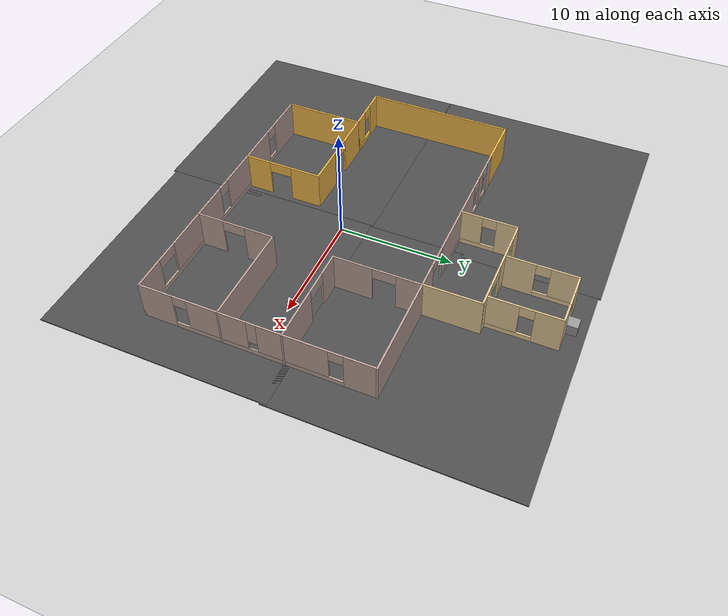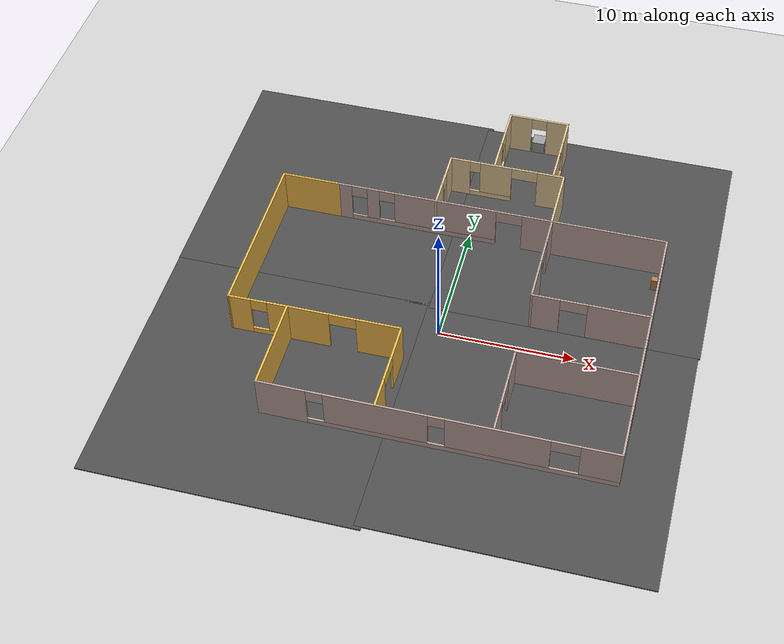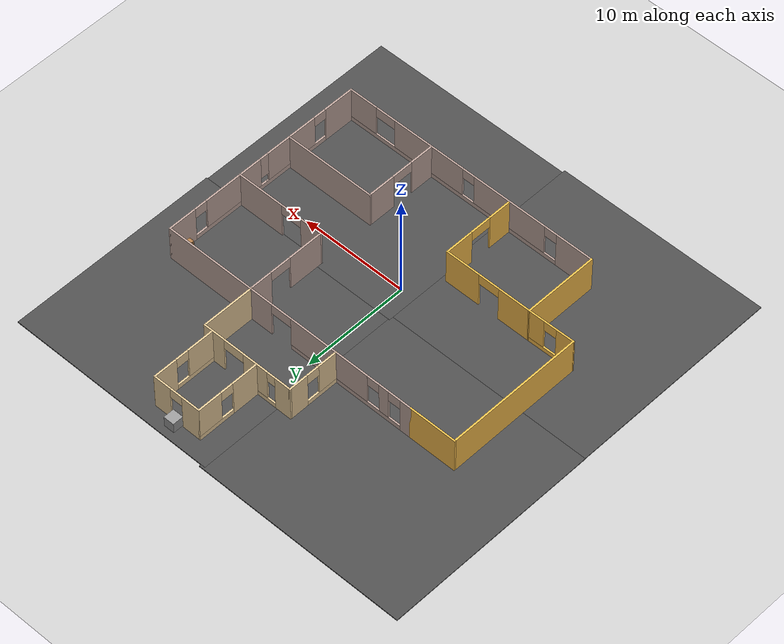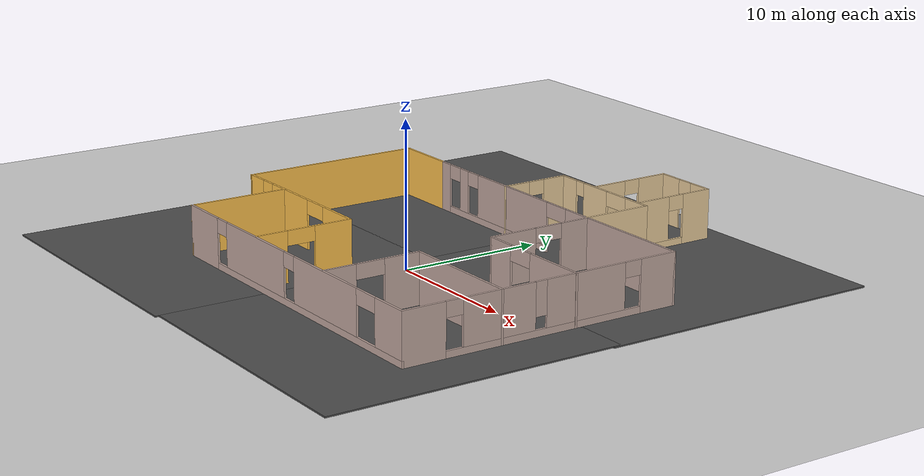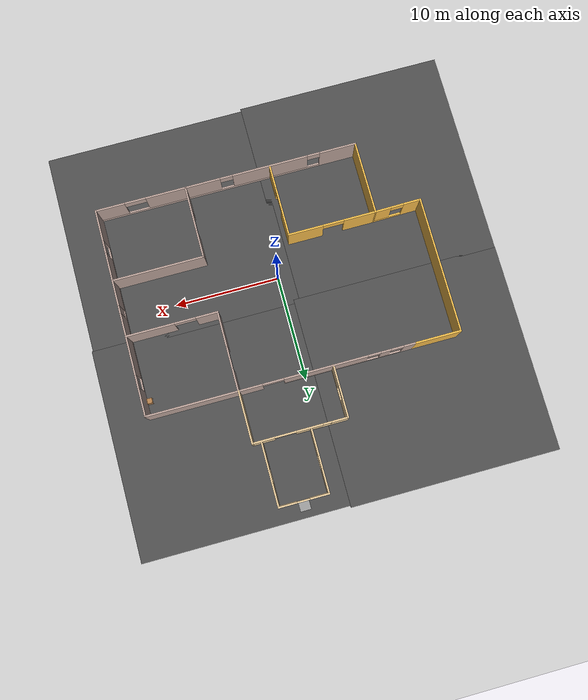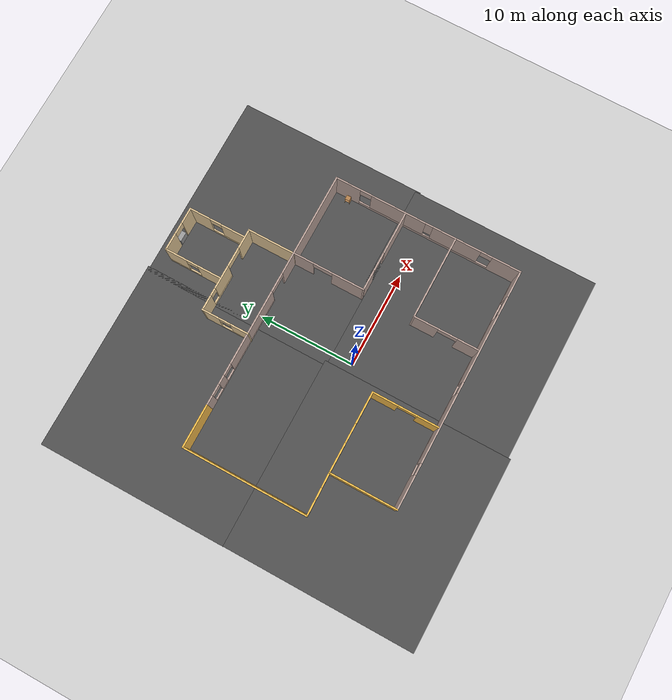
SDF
<sdf version="1.7">
 <world name="default">
  <model name="ground_plane">
   <static>1</static>
   <link name="link">
    <collision name="collision">
     <geometry><plane><normal>0 0 1</normal><size>100 100</size></plane></geometry>
     <surface><friction><ode><mu>100</mu><mu2>50</mu2></ode></friction></surface>
    </collision>
    <visual name="visual">
     <cast_shadows>0</cast_shadows>
     <geometry><plane><normal>0 0 1</normal><size>100 100</size></plane></geometry>
     <material>
      <script><uri>file://media/materials/scripts/gazebo.material</uri><name>Gazebo/Grey</name></script>
     </material>
    </visual>
   </link>
  </model>
  <model name="asphalt_plane">
   <static>1</static>
   <link name="link">
    <collision name="collision">
     <geometry><box><size>20 20 0.1</size></box></geometry>
     <surface><friction><ode><mu>100</mu><mu2>50</mu2></ode></friction></surface>
    </collision>
    <visual name="visual">
     <cast_shadows>0</cast_shadows>
     <geometry><box><size>20 20 0.1</size></box></geometry>
     <material>
      <script>
       <uri>model://asphalt_plane/materials/scripts</uri>
       <uri>model://asphalt_plane/materials/textures</uri>
       <name>vrc/asphalt</name>
      </script>
     </material>
    </visual>
   </link>
   <pose>-10.8531 -7.50842 0 0 -0 0</pose>
  </model>
  <model name="asphalt_plane_clone">
   <static>1</static>
   <link name="link">
    <collision name="collision">
     <geometry><box><size>20 20 0.1</size></box></geometry>
     <surface><friction><ode><mu>100</mu><mu2>50</mu2></ode></friction></surface>
    </collision>
    <visual name="visual">
     <cast_shadows>0</cast_shadows>
     <geometry><box><size>20 20 0.1</size></box></geometry>
     <material>
      <script>
       <uri>model://asphalt_plane/materials/scripts</uri>
       <uri>model://asphalt_plane/materials/textures</uri>
       <name>vrc/asphalt</name>
      </script>
     </material>
    </visual>
   </link>
   <pose>-10.8719 12.3643 0 0 -0 0</pose>
  </model>
  <model name="asphalt_plane_clone_clone">
   <static>1</static>
   <link name="link">
    <collision name="collision">
     <geometry><box><size>20 20 0.1</size></box></geometry>
     <surface><friction><ode><mu>100</mu><mu2>50</mu2></ode></friction></surface>
    </collision>
    <visual name="visual">
     <cast_shadows>0</cast_shadows>
     <geometry><box><size>20 20 0.1</size></box></geometry>
     <material>
      <script>
       <uri>model://asphalt_plane/materials/scripts</uri>
       <uri>model://asphalt_plane/materials/textures</uri>
       <name>vrc/asphalt</name>
      </script>
     </material>
    </visual>
   </link>
   <pose>8.71597 12.1785 0 0 -0 0</pose>
  </model>
  <model name="asphalt_plane_clone_clone_0">
   <static>1</static>
   <link name="link">
    <collision name="collision">
     <geometry><box><size>20 20 0.1</size></box></geometry>
     <surface><friction><ode><mu>100</mu><mu2>50</mu2></ode></friction></surface>
    </collision>
    <visual name="visual">
     <cast_shadows>0</cast_shadows>
     <geometry><box><size>20 20 0.1</size></box></geometry>
     <material>
      <script>
       <uri>model://asphalt_plane/materials/scripts</uri>
       <uri>model://asphalt_plane/materials/textures</uri>
       <name>vrc/asphalt</name>
      </script>
     </material>
    </visual>
   </link>
   <pose>8.59987 -7.25838 0 0 -0 0</pose>
  </model>
  <light name="sun" type="directional">
   <pose>0 0 10 0 -0 0</pose>
   <diffuse>0.8 0.8 0.8 1</diffuse>
   <specular>0.2 0.2 0.2 1</specular>
   <attenuation>
    <range>1000</range>
    <constant>0.9</constant>
    <linear>0.01</linear>
    <quadratic>0.001</quadratic>
   </attenuation>
   <direction>-0.5 0.1 -0.9</direction>
   <spot><inner_angle>0</inner_angle><outer_angle>0</outer_angle><falloff>0</falloff></spot>
  </light>
  <gravity>0 0 -9.8</gravity>
  <magnetic_field>6e-06 2.3e-05 -4.2e-05</magnetic_field>
  <atmosphere type="adiabatic"/>
  <physics name="default_physics" default="0" type="ode">
   <max_step_size>0.001</max_step_size>
   <real_time_factor>1</real_time_factor>
   <real_time_update_rate>1000</real_time_update_rate>
  </physics>
  <scene><ambient>0.4 0.4 0.4 1</ambient><background>0.7 0.7 0.7 1</background><shadows>1</shadows></scene>
  <audio><device>default</device></audio>
  <spherical_coordinates>
   <surface_model>EARTH_WGS84</surface_model>
   <latitude_deg>47.8406</latitude_deg>
   <longitude_deg>10.6199</longitude_deg>
   <elevation>740</elevation>
   <heading_deg>180</heading_deg>
  </spherical_coordinates>
  <model name="newHouseModel">
   <pose>0.12131 5.30636 0 0 -0 0</pose>
   <link name="Wall_107">
    <pose>2.16592 -15.2555 0 0 -0 0</pose>
    <visual name="Wall_107_Visual_0">
     <pose>-10.8373 0 1.75 0 -0 0</pose>
     <geometry><box><size>3.57533 0.15 3.5</size></box></geometry>
     <material>
      <script><uri>file://media/materials/scripts/gazebo.material</uri><name>Gazebo/Grey</name></script>
      <ambient>0.760784 0.662745 0.627451 1</ambient>
     </material>
     <meta><layer>0</layer></meta>
    </visual>
    <collision name="Wall_107_Collision_0">
     <geometry><box><size>3.57533 0.15 3.5</size></box></geometry>
     <pose>-10.8373 0 1.75 0 -0 0</pose>
    </collision>
    <visual name="Wall_107_Visual_1">
     <pose>1.78767 0 0.25 0 -0 0</pose>
     <geometry><box><size>21.6747 0.15 0.5</size></box></geometry>
     <material>
      <script><uri>file://media/materials/scripts/gazebo.material</uri><name>Gazebo/Grey</name></script>
      <ambient>0.760784 0.662745 0.627451 1</ambient>
     </material>
     <meta><layer>0</layer></meta>
    </visual>
    <collision name="Wall_107_Collision_1">
     <geometry><box><size>21.6747 0.15 0.5</size></box></geometry>
     <pose>1.78767 0 0.25 0 -0 0</pose>
    </collision>
    <visual name="Wall_107_Visual_2">
     <pose>-4.21472 0 2 0 -0 0</pose>
     <geometry><box><size>7.26989 0.15 3</size></box></geometry>
     <material>
      <script><uri>file://media/materials/scripts/gazebo.material</uri><name>Gazebo/Grey</name></script>
      <ambient>0.760784 0.662745 0.627451 1</ambient>
     </material>
     <meta><layer>0</layer></meta>
    </visual>
    <collision name="Wall_107_Collision_2">
     <geometry><box><size>7.26989 0.15 3</size></box></geometry>
     <pose>-4.21472 0 2 0 -0 0</pose>
    </collision>
    <visual name="Wall_107_Visual_3">
     <pose>4.20926 0 2 0 -0 0</pose>
     <geometry><box><size>7.17807 0.15 3</size></box></geometry>
     <material>
      <script><uri>file://media/materials/scripts/gazebo.material</uri><name>Gazebo/Grey</name></script>
      <ambient>0.760784 0.662745 0.627451 1</ambient>
     </material>
     <meta><layer>0</layer></meta>
    </visual>
    <collision name="Wall_107_Collision_3">
     <geometry><box><size>7.17807 0.15 3</size></box></geometry>
     <pose>4.20926 0 2 0 -0 0</pose>
    </collision>
    <visual name="Wall_107_Visual_4">
     <pose>11.2116 0 2 0 -0 0</pose>
     <geometry><box><size>2.82671 0.15 3</size></box></geometry>
     <material>
      <script><uri>file://media/materials/scripts/gazebo.material</uri><name>Gazebo/Grey</name></script>
      <ambient>0.760784 0.662745 0.627451 1</ambient>
     </material>
     <meta><layer>0</layer></meta>
    </visual>
    <collision name="Wall_107_Collision_4">
     <geometry><box><size>2.82671 0.15 3</size></box></geometry>
     <pose>11.2116 0 2 0 -0 0</pose>
    </collision>
    <visual name="Wall_107_Visual_5">
     <pose>-8.44967 0 3 0 -0 0</pose>
     <geometry><box><size>1.2 0.15 1</size></box></geometry>
     <material>
      <script><uri>file://media/materials/scripts/gazebo.material</uri><name>Gazebo/Grey</name></script>
      <ambient>0.760784 0.662745 0.627451 1</ambient>
     </material>
     <meta><layer>0</layer></meta>
    </visual>
    <collision name="Wall_107_Collision_5">
     <geometry><box><size>1.2 0.15 1</size></box></geometry>
     <pose>-8.44967 0 3 0 -0 0</pose>
    </collision>
    <visual name="Wall_107_Visual_6">
     <pose>0.020225 0 3 0 -0 0</pose>
     <geometry><box><size>1.2 0.15 1</size></box></geometry>
     <material>
      <script><uri>file://media/materials/scripts/gazebo.material</uri><name>Gazebo/Grey</name></script>
      <ambient>0.760784 0.662745 0.627451 1</ambient>
     </material>
     <meta><layer>0</layer></meta>
    </visual>
    <collision name="Wall_107_Collision_6">
     <geometry><box><size>1.2 0.15 1</size></box></geometry>
     <pose>0.020225 0 3 0 -0 0</pose>
    </collision>
    <visual name="Wall_107_Visual_7">
     <pose>8.79829 0 3 0 -0 0</pose>
     <geometry><box><size>2 0.15 1</size></box></geometry>
     <material>
      <script><uri>file://media/materials/scripts/gazebo.material</uri><name>Gazebo/Grey</name></script>
      <ambient>0.760784 0.662745 0.627451 1</ambient>
     </material>
     <meta><layer>0</layer></meta>
    </visual>
    <collision name="Wall_107_Collision_7">
     <geometry><box><size>2 0.15 1</size></box></geometry>
     <pose>8.79829 0 3 0 -0 0</pose>
    </collision>
   </link>
   <link name="Wall_108">
    <pose>14.7159 -11.8305 0 0 -0 1.5708</pose>
    <visual name="Wall_108_Visual_0">
     <pose>-1.99699 0 1.75 0 -0 0</pose>
     <geometry><box><size>3.00601 0.15 3.5</size></box></geometry>
     <material>
      <script><uri>file://media/materials/scripts/gazebo.material</uri><name>Gazebo/Grey</name></script>
      <ambient>0.760784 0.662745 0.627451 1</ambient>
     </material>
     <meta><layer>0</layer></meta>
    </visual>
    <collision name="Wall_108_Collision_0">
     <geometry><box><size>3.00601 0.15 3.5</size></box></geometry>
     <pose>-1.99699 0 1.75 0 -0 0</pose>
    </collision>
    <visual name="Wall_108_Visual_1">
     <pose>1.50301 0 0.25 0 -0 0</pose>
     <geometry><box><size>3.99399 0.15 0.5</size></box></geometry>
     <material>
      <script><uri>file://media/materials/scripts/gazebo.material</uri><name>Gazebo/Grey</name></script>
      <ambient>0.760784 0.662745 0.627451 1</ambient>
     </material>
     <meta><layer>0</layer></meta>
    </visual>
    <collision name="Wall_108_Collision_1">
     <geometry><box><size>3.99399 0.15 0.5</size></box></geometry>
     <pose>1.50301 0 0.25 0 -0 0</pose>
    </collision>
    <visual name="Wall_108_Visual_2">
     <pose>2.10301 0 2 0 -0 0</pose>
     <geometry><box><size>2.79399 0.15 3</size></box></geometry>
     <material>
      <script><uri>file://media/materials/scripts/gazebo.material</uri><name>Gazebo/Grey</name></script>
      <ambient>0.760784 0.662745 0.627451 1</ambient>
     </material>
     <meta><layer>0</layer></meta>
    </visual>
    <collision name="Wall_108_Collision_2">
     <geometry><box><size>2.79399 0.15 3</size></box></geometry>
     <pose>2.10301 0 2 0 -0 0</pose>
    </collision>
    <visual name="Wall_108_Visual_3">
     <pose>0.106013 0 3 0 -0 0</pose>
     <geometry><box><size>1.2 0.15 1</size></box></geometry>
     <material>
      <script><uri>file://media/materials/scripts/gazebo.material</uri><name>Gazebo/Grey</name></script>
      <ambient>0.760784 0.662745 0.627451 1</ambient>
     </material>
     <meta><layer>0</layer></meta>
    </visual>
    <collision name="Wall_108_Collision_3">
     <geometry><box><size>1.2 0.15 1</size></box></geometry>
     <pose>0.106013 0 3 0 -0 0</pose>
    </collision>
   </link>
   <link name="Wall_109">
    <collision name="Wall_109_Collision">
     <geometry><box><size>8.75 0.15 3.5</size></box></geometry>
     <pose>0 0 1.75 0 -0 0</pose>
    </collision>
    <visual name="Wall_109_Visual">
     <pose>0 0 1.75 0 -0 0</pose>
     <geometry><box><size>8.75 0.15 3.5</size></box></geometry>
     <material>
      <script><uri>file://media/materials/scripts/gazebo.material</uri><name>Gazebo/Grey</name></script>
      <ambient>0.760784 0.662745 0.627451 1</ambient>
     </material>
     <meta><layer>0</layer></meta>
    </visual>
    <pose>10.4159 -8.4055 0 0 -0 3.14159</pose>
   </link>
   <link name="Wall_110">
    <pose>6.11592 -11.8305 0 0 -0 -1.5708</pose>
    <visual name="Wall_110_Visual_0">
     <pose>-2.18331 0 1.75 0 -0 0</pose>
     <geometry><box><size>2.63339 0.15 3.5</size></box></geometry>
     <material>
      <script><uri>file://media/materials/scripts/gazebo.material</uri><name>Gazebo/Grey</name></script>
      <ambient>0.760784 0.662745 0.627451 1</ambient>
     </material>
     <meta><layer>0</layer></meta>
    </visual>
    <collision name="Wall_110_Collision_0">
     <geometry><box><size>2.63339 0.15 3.5</size></box></geometry>
     <pose>-2.18331 0 1.75 0 -0 0</pose>
    </collision>
    <visual name="Wall_110_Visual_1">
     <pose>2.31669 0 1.75 0 -0 0</pose>
     <geometry><box><size>2.36661 0.15 3.5</size></box></geometry>
     <material>
      <script><uri>file://media/materials/scripts/gazebo.material</uri><name>Gazebo/Grey</name></script>
      <ambient>0.760784 0.662745 0.627451 1</ambient>
     </material>
     <meta><layer>0</layer></meta>
    </visual>
    <collision name="Wall_110_Collision_1">
     <geometry><box><size>2.36661 0.15 3.5</size></box></geometry>
     <pose>2.31669 0 1.75 0 -0 0</pose>
    </collision>
    <visual name="Wall_110_Visual_2">
     <pose>0.133389 0 3 0 -0 0</pose>
     <geometry><box><size>2 0.15 1</size></box></geometry>
     <material>
      <script><uri>file://media/materials/scripts/gazebo.material</uri><name>Gazebo/Grey</name></script>
      <ambient>0.760784 0.662745 0.627451 1</ambient>
     </material>
     <meta><layer>0</layer></meta>
    </visual>
    <collision name="Wall_110_Collision_2">
     <geometry><box><size>2 0.15 1</size></box></geometry>
     <pose>0.133389 0 3 0 -0 0</pose>
    </collision>
   </link>
   <link name="Wall_112">
    <collision name="Wall_112_Collision">
     <geometry><box><size>7.061 0.15 3.5</size></box></geometry>
     <pose>0 0 1.75 0 -0 0</pose>
    </collision>
    <visual name="Wall_112_Visual">
     <pose>0 0 1.75 0 -0 0</pose>
     <geometry><box><size>7.061 0.15 3.5</size></box></geometry>
     <material>
      <script><uri>file://media/materials/scripts/gazebo.material</uri><name>Gazebo/Grey</name></script>
      <ambient>1 0.764706 0.305882 1</ambient>
     </material>
     <meta><layer>0</layer></meta>
    </visual>
    <pose>-10.3841 -11.8 0 0 -0 1.5708</pose>
   </link>
   <link name="Wall_113">
    <pose>-6.20908 -8.3445 0 0 -0 0</pose>
    <visual name="Wall_113_Visual_0">
     <pose>-2.68342 0 1.75 0 -0 0</pose>
     <geometry><box><size>3.13316 0.15 3.5</size></box></geometry>
     <material>
      <script><uri>file://media/materials/scripts/gazebo.material</uri><name>Gazebo/Grey</name></script>
      <ambient>1 0.764706 0.305882 1</ambient>
     </material>
     <meta><layer>0</layer></meta>
    </visual>
    <collision name="Wall_113_Collision_0">
     <geometry><box><size>3.13316 0.15 3.5</size></box></geometry>
     <pose>-2.68342 0 1.75 0 -0 0</pose>
    </collision>
    <visual name="Wall_113_Visual_1">
     <pose>2.56658 0 1.75 0 -0 0</pose>
     <geometry><box><size>3.36684 0.15 3.5</size></box></geometry>
     <material>
      <script><uri>file://media/materials/scripts/gazebo.material</uri><name>Gazebo/Grey</name></script>
      <ambient>1 0.764706 0.305882 1</ambient>
     </material>
     <meta><layer>0</layer></meta>
    </visual>
    <collision name="Wall_113_Collision_1">
     <geometry><box><size>3.36684 0.15 3.5</size></box></geometry>
     <pose>2.56658 0 1.75 0 -0 0</pose>
    </collision>
    <visual name="Wall_113_Visual_2">
     <pose>-0.116838 0 3 0 -0 0</pose>
     <geometry><box><size>2 0.15 1</size></box></geometry>
     <material>
      <script><uri>file://media/materials/scripts/gazebo.material</uri><name>Gazebo/Grey</name></script>
      <ambient>1 0.764706 0.305882 1</ambient>
     </material>
     <meta><layer>0</layer></meta>
    </visual>
    <collision name="Wall_113_Collision_2">
     <geometry><box><size>2 0.15 1</size></box></geometry>
     <pose>-0.116838 0 3 0 -0 0</pose>
    </collision>
   </link>
   <link name="Wall_114">
    <pose>-2.03408 -11.8 0 0 -0 -1.5708</pose>
    <visual name="Wall_114_Visual_0">
     <pose>-2.16988 0 1.75 0 -0 0</pose>
     <geometry><box><size>2.72075 0.15 3.5</size></box></geometry>
     <material>
      <script><uri>file://media/materials/scripts/gazebo.material</uri><name>Gazebo/Grey</name></script>
      <ambient>1 0.764706 0.305882 1</ambient>
     </material>
     <meta><layer>0</layer></meta>
    </visual>
    <collision name="Wall_114_Collision_0">
     <geometry><box><size>2.72075 0.15 3.5</size></box></geometry>
     <pose>-2.16988 0 1.75 0 -0 0</pose>
    </collision>
    <visual name="Wall_114_Visual_1">
     <pose>2.36037 0 1.75 0 -0 0</pose>
     <geometry><box><size>2.33977 0.15 3.5</size></box></geometry>
     <material>
      <script><uri>file://media/materials/scripts/gazebo.material</uri><name>Gazebo/Grey</name></script>
      <ambient>1 0.764706 0.305882 1</ambient>
     </material>
     <meta><layer>0</layer></meta>
    </visual>
    <collision name="Wall_114_Collision_1">
     <geometry><box><size>2.33977 0.15 3.5</size></box></geometry>
     <pose>2.36037 0 1.75 0 -0 0</pose>
    </collision>
    <visual name="Wall_114_Visual_2">
     <pose>0.190489 0 3 0 -0 0</pose>
     <geometry><box><size>2 0.15 1</size></box></geometry>
     <material>
      <script><uri>file://media/materials/scripts/gazebo.material</uri><name>Gazebo/Grey</name></script>
      <ambient>1 0.764706 0.305882 1</ambient>
     </material>
     <meta><layer>0</layer></meta>
    </visual>
    <collision name="Wall_114_Collision_2">
     <geometry><box><size>2 0.15 1</size></box></geometry>
     <pose>0.190489 0 3 0 -0 0</pose>
    </collision>
   </link>
   <link name="Wall_117">
    <pose>2.16592 4.4445 0 0 -0 0</pose>
    <visual name="Wall_117_Visual_0">
     <pose>-12.0687 0 1.75 0 -0 0</pose>
     <geometry><box><size>1.11254 0.15 3.5</size></box></geometry>
     <material>
      <script><uri>file://media/materials/scripts/gazebo.material</uri><name>Gazebo/Grey</name></script>
      <ambient>0.760784 0.662745 0.627451 1</ambient>
     </material>
     <meta><layer>0</layer></meta>
    </visual>
    <collision name="Wall_117_Collision_0">
     <geometry><box><size>1.11254 0.15 3.5</size></box></geometry>
     <pose>-12.0687 0 1.75 0 -0 0</pose>
    </collision>
    <visual name="Wall_117_Visual_1">
     <pose>7.17191 0 1.75 0 -0 0</pose>
     <geometry><box><size>10.9062 0.15 3.5</size></box></geometry>
     <material>
      <script><uri>file://media/materials/scripts/gazebo.material</uri><name>Gazebo/Grey</name></script>
      <ambient>0.760784 0.662745 0.627451 1</ambient>
     </material>
     <meta><layer>0</layer></meta>
    </visual>
    <collision name="Wall_117_Collision_1">
     <geometry><box><size>10.9062 0.15 3.5</size></box></geometry>
     <pose>7.17191 0 1.75 0 -0 0</pose>
    </collision>
    <visual name="Wall_117_Visual_2">
     <pose>-5.89682 0 0.25 0 -0 0</pose>
     <geometry><box><size>11.2313 0.15 0.5</size></box></geometry>
     <material>
      <script><uri>file://media/materials/scripts/gazebo.material</uri><name>Gazebo/Grey</name></script>
      <ambient>0.760784 0.662745 0.627451 1</ambient>
     </material>
     <meta><layer>0</layer></meta>
    </visual>
    <collision name="Wall_117_Collision_2">
     <geometry><box><size>11.2313 0.15 0.5</size></box></geometry>
     <pose>-5.89682 0 0.25 0 -0 0</pose>
    </collision>
    <visual name="Wall_117_Visual_3">
     <pose>-9.83515 0 2 0 -0 0</pose>
     <geometry><box><size>0.954616 0.15 3</size></box></geometry>
     <material>
      <script><uri>file://media/materials/scripts/gazebo.material</uri><name>Gazebo/Grey</name></script>
      <ambient>0.760784 0.662745 0.627451 1</ambient>
     </material>
     <meta><layer>0</layer></meta>
    </visual>
    <collision name="Wall_117_Collision_3">
     <geometry><box><size>0.954616 0.15 3</size></box></geometry>
     <pose>-9.83515 0 2 0 -0 0</pose>
    </collision>
    <visual name="Wall_117_Visual_4">
     <pose>-4.21951 0 2 0 -0 0</pose>
     <geometry><box><size>7.87667 0.15 3</size></box></geometry>
     <material>
      <script><uri>file://media/materials/scripts/gazebo.material</uri><name>Gazebo/Grey</name></script>
      <ambient>0.760784 0.662745 0.627451 1</ambient>
     </material>
     <meta><layer>0</layer></meta>
    </visual>
    <collision name="Wall_117_Collision_4">
     <geometry><box><size>7.87667 0.15 3</size></box></geometry>
     <pose>-4.21951 0 2 0 -0 0</pose>
    </collision>
    <visual name="Wall_117_Visual_5">
     <pose>-10.9125 0 3 0 -0 0</pose>
     <geometry><box><size>1.2 0.15 1</size></box></geometry>
     <material>
      <script><uri>file://media/materials/scripts/gazebo.material</uri><name>Gazebo/Grey</name></script>
      <ambient>0.760784 0.662745 0.627451 1</ambient>
     </material>
     <meta><layer>0</layer></meta>
    </visual>
    <collision name="Wall_117_Collision_5">
     <geometry><box><size>1.2 0.15 1</size></box></geometry>
     <pose>-10.9125 0 3 0 -0 0</pose>
    </collision>
    <visual name="Wall_117_Visual_6">
     <pose>-8.75784 0 3 0 -0 0</pose>
     <geometry><box><size>1.2 0.15 1</size></box></geometry>
     <material>
      <script><uri>file://media/materials/scripts/gazebo.material</uri><name>Gazebo/Grey</name></script>
      <ambient>0.760784 0.662745 0.627451 1</ambient>
     </material>
     <meta><layer>0</layer></meta>
    </visual>
    <collision name="Wall_117_Collision_6">
     <geometry><box><size>1.2 0.15 1</size></box></geometry>
     <pose>-8.75784 0 3 0 -0 0</pose>
    </collision>
    <visual name="Wall_117_Visual_7">
     <pose>0.718827 0 3 0 -0 0</pose>
     <geometry><box><size>2 0.15 1</size></box></geometry>
     <material>
      <script><uri>file://media/materials/scripts/gazebo.material</uri><name>Gazebo/Grey</name></script>
      <ambient>0.760784 0.662745 0.627451 1</ambient>
     </material>
     <meta><layer>0</layer></meta>
    </visual>
    <collision name="Wall_117_Collision_7">
     <geometry><box><size>2 0.15 1</size></box></geometry>
     <pose>0.718827 0 3 0 -0 0</pose>
    </collision>
   </link>
   <link name="Wall_118">
    <pose>14.7159 -1.9805 0 0 -0 -1.5708</pose>
    <visual name="Wall_118_Visual_0">
     <pose>-5.15515 0 1.75 0 -0 0</pose>
     <geometry><box><size>2.68969 0.15 3.5</size></box></geometry>
     <material>
      <script><uri>file://media/materials/scripts/gazebo.material</uri><name>Gazebo/Grey</name></script>
      <ambient>0.760784 0.662745 0.627451 1</ambient>
     </material>
     <meta><layer>0</layer></meta>
    </visual>
    <collision name="Wall_118_Collision_0">
     <geometry><box><size>2.68969 0.15 3.5</size></box></geometry>
     <pose>-5.15515 0 1.75 0 -0 0</pose>
    </collision>
    <visual name="Wall_118_Visual_1">
     <pose>1.34485 0 0.25 0 -0 0</pose>
     <geometry><box><size>10.3103 0.15 0.5</size></box></geometry>
     <material>
      <script><uri>file://media/materials/scripts/gazebo.material</uri><name>Gazebo/Grey</name></script>
      <ambient>0.760784 0.662745 0.627451 1</ambient>
     </material>
     <meta><layer>0</layer></meta>
    </visual>
    <collision name="Wall_118_Collision_1">
     <geometry><box><size>10.3103 0.15 0.5</size></box></geometry>
     <pose>1.34485 0 0.25 0 -0 0</pose>
    </collision>
    <visual name="Wall_118_Visual_2">
     <pose>0.307815 0 2 0 -0 0</pose>
     <geometry><box><size>5.83625 0.15 3</size></box></geometry>
     <material>
      <script><uri>file://media/materials/scripts/gazebo.material</uri><name>Gazebo/Grey</name></script>
      <ambient>0.760784 0.662745 0.627451 1</ambient>
     </material>
     <meta><layer>0</layer></meta>
    </visual>
    <collision name="Wall_118_Collision_2">
     <geometry><box><size>5.83625 0.15 3</size></box></geometry>
     <pose>0.307815 0 2 0 -0 0</pose>
    </collision>
    <visual name="Wall_118_Visual_3">
     <pose>5.26297 0 2 0 -0 0</pose>
     <geometry><box><size>2.47406 0.15 3</size></box></geometry>
     <material>
      <script><uri>file://media/materials/scripts/gazebo.material</uri><name>Gazebo/Grey</name></script>
      <ambient>0.760784 0.662745 0.627451 1</ambient>
     </material>
     <meta><layer>0</layer></meta>
    </visual>
    <collision name="Wall_118_Collision_3">
     <geometry><box><size>2.47406 0.15 3</size></box></geometry>
     <pose>5.26297 0 2 0 -0 0</pose>
    </collision>
    <visual name="Wall_118_Visual_4">
     <pose>3.62594 0 0.5 0 -0 0</pose>
     <geometry><box><size>0.8 0.15 0</size></box></geometry>
     <material>
      <script><uri>file://media/materials/scripts/gazebo.material</uri><name>Gazebo/Grey</name></script>
      <ambient>0.760784 0.662745 0.627451 1</ambient>
     </material>
     <meta><layer>0</layer></meta>
    </visual>
    <collision name="Wall_118_Collision_4">
     <geometry><box><size>0.8 0.15 0</size></box></geometry>
     <pose>3.62594 0 0.5 0 -0 0</pose>
    </collision>
    <visual name="Wall_118_Visual_5">
     <pose>3.62594 0 2.4 0 -0 0</pose>
     <geometry><box><size>0.8 0.15 2.2</size></box></geometry>
     <material>
      <script><uri>file://media/materials/scripts/gazebo.material</uri><name>Gazebo/Grey</name></script>
      <ambient>0.760784 0.662745 0.627451 1</ambient>
     </material>
     <meta><layer>0</layer></meta>
    </visual>
    <collision name="Wall_118_Collision_5">
     <geometry><box><size>0.8 0.15 2.2</size></box></geometry>
     <pose>3.62594 0 2.4 0 -0 0</pose>
    </collision>
    <visual name="Wall_118_Visual_6">
     <pose>-3.21031 0 3 0 -0 0</pose>
     <geometry><box><size>1.2 0.15 1</size></box></geometry>
     <material>
      <script><uri>file://media/materials/scripts/gazebo.material</uri><name>Gazebo/Grey</name></script>
      <ambient>0.760784 0.662745 0.627451 1</ambient>
     </material>
     <meta><layer>0</layer></meta>
    </visual>
    <collision name="Wall_118_Collision_6">
     <geometry><box><size>1.2 0.15 1</size></box></geometry>
     <pose>-3.21031 0 3 0 -0 0</pose>
    </collision>
   </link>
   <link name="Wall_120">
    <pose>10.4349 -3.0455 0 0 -0 0</pose>
    <visual name="Wall_120_Visual_0">
     <pose>-3.30066 0 1.75 0 -0 0</pose>
     <geometry><box><size>2.14868 0.15 3.5</size></box></geometry>
     <material>
      <script><uri>file://media/materials/scripts/gazebo.material</uri><name>Gazebo/Grey</name></script>
      <ambient>0.760784 0.662745 0.627451 1</ambient>
     </material>
     <meta><layer>0</layer></meta>
    </visual>
    <collision name="Wall_120_Collision_0">
     <geometry><box><size>2.14868 0.15 3.5</size></box></geometry>
     <pose>-3.30066 0 1.75 0 -0 0</pose>
    </collision>
    <visual name="Wall_120_Visual_1">
     <pose>2.07434 0 1.75 0 -0 0</pose>
     <geometry><box><size>4.60132 0.15 3.5</size></box></geometry>
     <material>
      <script><uri>file://media/materials/scripts/gazebo.material</uri><name>Gazebo/Grey</name></script>
      <ambient>0.760784 0.662745 0.627451 1</ambient>
     </material>
     <meta><layer>0</layer></meta>
    </visual>
    <collision name="Wall_120_Collision_1">
     <geometry><box><size>4.60132 0.15 3.5</size></box></geometry>
     <pose>2.07434 0 1.75 0 -0 0</pose>
    </collision>
    <visual name="Wall_120_Visual_2">
     <pose>-1.22632 0 3 0 -0 0</pose>
     <geometry><box><size>2 0.15 1</size></box></geometry>
     <material>
      <script><uri>file://media/materials/scripts/gazebo.material</uri><name>Gazebo/Grey</name></script>
      <ambient>0.760784 0.662745 0.627451 1</ambient>
     </material>
     <meta><layer>0</layer></meta>
    </visual>
    <collision name="Wall_120_Collision_2">
     <geometry><box><size>2 0.15 1</size></box></geometry>
     <pose>-1.22632 0 3 0 -0 0</pose>
    </collision>
   </link>
   <link name="Wall_122">
    <pose>6.13492 0.6295 0 0 -0 1.5708</pose>
    <visual name="Wall_122_Visual_0">
     <pose>-2.03729 0 1.75 0 -0 0</pose>
     <geometry><box><size>3.42543 0.15 3.5</size></box></geometry>
     <material>
      <script><uri>file://media/materials/scripts/gazebo.material</uri><name>Gazebo/Grey</name></script>
      <ambient>0.760784 0.662745 0.627451 1</ambient>
     </material>
     <meta><layer>0</layer></meta>
    </visual>
    <collision name="Wall_122_Collision_0">
     <geometry><box><size>3.42543 0.15 3.5</size></box></geometry>
     <pose>-2.03729 0 1.75 0 -0 0</pose>
    </collision>
    <visual name="Wall_122_Visual_1">
     <pose>2.71271 0 1.75 0 -0 0</pose>
     <geometry><box><size>2.07457 0.15 3.5</size></box></geometry>
     <material>
      <script><uri>file://media/materials/scripts/gazebo.material</uri><name>Gazebo/Grey</name></script>
      <ambient>0.760784 0.662745 0.627451 1</ambient>
     </material>
     <meta><layer>0</layer></meta>
    </visual>
    <collision name="Wall_122_Collision_1">
     <geometry><box><size>2.07457 0.15 3.5</size></box></geometry>
     <pose>2.71271 0 1.75 0 -0 0</pose>
    </collision>
    <visual name="Wall_122_Visual_2">
     <pose>0.675428 0 3 0 -0 0</pose>
     <geometry><box><size>2 0.15 1</size></box></geometry>
     <material>
      <script><uri>file://media/materials/scripts/gazebo.material</uri><name>Gazebo/Grey</name></script>
      <ambient>0.760784 0.662745 0.627451 1</ambient>
     </material>
     <meta><layer>0</layer></meta>
    </visual>
    <collision name="Wall_122_Collision_2">
     <geometry><box><size>2 0.15 1</size></box></geometry>
     <pose>0.675428 0 3 0 -0 0</pose>
    </collision>
   </link>
   <link name="Wall_126">
    <collision name="Wall_126_Collision">
     <geometry><box><size>4.5 0.15 3.5</size></box></geometry>
     <pose>0 0 1.75 0 -0 0</pose>
    </collision>
    <visual name="Wall_126_Visual">
     <pose>0 0 1.75 0 -0 0</pose>
     <geometry><box><size>4.5 0.15 3.5</size></box></geometry>
     <material>
      <script><uri>file://media/materials/scripts/gazebo.material</uri><name>Gazebo/Grey</name></script>
      <ambient>1 0.764706 0.305882 1</ambient>
     </material>
     <meta><layer>0</layer></meta>
    </visual>
    <pose>-12.5591 4.4445 0 0 -0 3.14159</pose>
   </link>
   <link name="Wall_127">
    <collision name="Wall_127_Collision">
     <geometry><box><size>13 0.15 3.5</size></box></geometry>
     <pose>0 0 1.75 0 -0 0</pose>
    </collision>
    <visual name="Wall_127_Visual">
     <pose>0 0 1.75 0 -0 0</pose>
     <geometry><box><size>13 0.15 3.5</size></box></geometry>
     <material>
      <script><uri>file://media/materials/scripts/gazebo.material</uri><name>Gazebo/Grey</name></script>
      <ambient>1 0.764706 0.305882 1</ambient>
     </material>
     <meta><layer>0</layer></meta>
    </visual>
    <pose>-14.7341 -1.9805 0 0 -0 -1.5708</pose>
   </link>
   <link name="Wall_128">
    <pose>-12.5591 -8.375 0 0 -0 0.014022</pose>
    <visual name="Wall_128_Visual_0">
     <pose>-1.39411 0 1.75 0 -0 0</pose>
     <geometry><box><size>1.71181 0.15 3.5</size></box></geometry>
     <material>
      <script><uri>file://media/materials/scripts/gazebo.material</uri><name>Gazebo/Grey</name></script>
      <ambient>1 0.764706 0.305882 1</ambient>
     </material>
     <meta><layer>0</layer></meta>
    </visual>
    <collision name="Wall_128_Collision_0">
     <geometry><box><size>1.71181 0.15 3.5</size></box></geometry>
     <pose>-1.39411 0 1.75 0 -0 0</pose>
    </collision>
    <visual name="Wall_128_Visual_1">
     <pose>0.855902 0 0.25 0 -0 0</pose>
     <geometry><box><size>2.78821 0.15 0.5</size></box></geometry>
     <material>
      <script><uri>file://media/materials/scripts/gazebo.material</uri><name>Gazebo/Grey</name></script>
      <ambient>1 0.764706 0.305882 1</ambient>
     </material>
     <meta><layer>0</layer></meta>
    </visual>
    <collision name="Wall_128_Collision_1">
     <geometry><box><size>2.78821 0.15 0.5</size></box></geometry>
     <pose>0.855902 0 0.25 0 -0 0</pose>
    </collision>
    <visual name="Wall_128_Visual_2">
     <pose>1.4559 0 2 0 -0 0</pose>
     <geometry><box><size>1.58821 0.15 3</size></box></geometry>
     <material>
      <script><uri>file://media/materials/scripts/gazebo.material</uri><name>Gazebo/Grey</name></script>
      <ambient>1 0.764706 0.305882 1</ambient>
     </material>
     <meta><layer>0</layer></meta>
    </visual>
    <collision name="Wall_128_Collision_2">
     <geometry><box><size>1.58821 0.15 3</size></box></geometry>
     <pose>1.4559 0 2 0 -0 0</pose>
    </collision>
    <visual name="Wall_128_Visual_3">
     <pose>0.061796 0 3 0 -0 0</pose>
     <geometry><box><size>1.2 0.15 1</size></box></geometry>
     <material>
      <script><uri>file://media/materials/scripts/gazebo.material</uri><name>Gazebo/Grey</name></script>
      <ambient>1 0.764706 0.305882 1</ambient>
     </material>
     <meta><layer>0</layer></meta>
    </visual>
    <collision name="Wall_128_Collision_3">
     <geometry><box><size>1.2 0.15 1</size></box></geometry>
     <pose>0.061796 0 3 0 -0 0</pose>
    </collision>
   </link>
   <link name="Wall_134">
    <pose>1.68192 9.2755 0 0 -0 0</pose>
    <visual name="Wall_134_Visual_0">
     <pose>-3.70266 0 1.75 0 -0 0</pose>
     <geometry><box><size>1.59468 0.15 3.5</size></box></geometry>
     <material>
      <script><uri>file://media/materials/scripts/gazebo.material</uri><name>Gazebo/Grey</name></script>
      <ambient>0.921569 0.807843 0.615686 1</ambient>
     </material>
     <meta><layer>0</layer></meta>
    </visual>
    <collision name="Wall_134_Collision_0">
     <geometry><box><size>1.59468 0.15 3.5</size></box></geometry>
     <pose>-3.70266 0 1.75 0 -0 0</pose>
    </collision>
    <visual name="Wall_134_Visual_1">
     <pose>3.43233 0 1.75 0 -0 0</pose>
     <geometry><box><size>2.13535 0.15 3.5</size></box></geometry>
     <material>
      <script><uri>file://media/materials/scripts/gazebo.material</uri><name>Gazebo/Grey</name></script>
      <ambient>0.921569 0.807843 0.615686 1</ambient>
     </material>
     <meta><layer>0</layer></meta>
    </visual>
    <collision name="Wall_134_Collision_1">
     <geometry><box><size>2.13535 0.15 3.5</size></box></geometry>
     <pose>3.43233 0 1.75 0 -0 0</pose>
    </collision>
    <visual name="Wall_134_Visual_2">
     <pose>-1.27033 0 0.25 0 -0 0</pose>
     <geometry><box><size>3.26997 0.15 0.5</size></box></geometry>
     <material>
      <script><uri>file://media/materials/scripts/gazebo.material</uri><name>Gazebo/Grey</name></script>
      <ambient>0.921569 0.807843 0.615686 1</ambient>
     </material>
     <meta><layer>0</layer></meta>
    </visual>
    <collision name="Wall_134_Collision_2">
     <geometry><box><size>3.26997 0.15 0.5</size></box></geometry>
     <pose>-1.27033 0 0.25 0 -0 0</pose>
    </collision>
    <visual name="Wall_134_Visual_3">
     <pose>-0.870335 0 2 0 -0 0</pose>
     <geometry><box><size>2.46997 0.15 3</size></box></geometry>
     <material>
      <script><uri>file://media/materials/scripts/gazebo.material</uri><name>Gazebo/Grey</name></script>
      <ambient>0.921569 0.807843 0.615686 1</ambient>
     </material>
     <meta><layer>0</layer></meta>
    </visual>
    <collision name="Wall_134_Collision_3">
     <geometry><box><size>2.46997 0.15 3</size></box></geometry>
     <pose>-0.870335 0 2 0 -0 0</pose>
    </collision>
    <visual name="Wall_134_Visual_4">
     <pose>-2.50532 0 3 0 -0 0</pose>
     <geometry><box><size>0.8 0.15 1</size></box></geometry>
     <material>
      <script><uri>file://media/materials/scripts/gazebo.material</uri><name>Gazebo/Grey</name></script>
      <ambient>0.921569 0.807843 0.615686 1</ambient>
     </material>
     <meta><layer>0</layer></meta>
    </visual>
    <collision name="Wall_134_Collision_4">
     <geometry><box><size>0.8 0.15 1</size></box></geometry>
     <pose>-2.50532 0 3 0 -0 0</pose>
    </collision>
    <visual name="Wall_134_Visual_5">
     <pose>1.36465 0 3 0 -0 0</pose>
     <geometry><box><size>2 0.15 1</size></box></geometry>
     <material>
      <script><uri>file://media/materials/scripts/gazebo.material</uri><name>Gazebo/Grey</name></script>
      <ambient>0.921569 0.807843 0.615686 1</ambient>
     </material>
     <meta><layer>0</layer></meta>
    </visual>
    <collision name="Wall_134_Collision_5">
     <geometry><box><size>2 0.15 1</size></box></geometry>
     <pose>1.36465 0 3 0 -0 0</pose>
    </collision>
   </link>
   <link name="Wall_135">
    <collision name="Wall_135_Collision">
     <geometry><box><size>5 0.15 3.5</size></box></geometry>
     <pose>0 0 1.75 0 -0 0</pose>
    </collision>
    <visual name="Wall_135_Visual">
     <pose>0 0 1.75 0 -0 0</pose>
     <geometry><box><size>5 0.15 3.5</size></box></geometry>
     <material>
      <script><uri>file://media/materials/scripts/gazebo.material</uri><name>Gazebo/Grey</name></script>
      <ambient>0.921569 0.807843 0.615686 1</ambient>
     </material>
     <meta><layer>0</layer></meta>
    </visual>
    <pose>6.10692 6.8505 0 0 -0 -1.5708</pose>
   </link>
   <link name="Wall_138">
    <pose>-2.74308 6.8505 0 0 -0 -1.5708</pose>
    <visual name="Wall_138_Visual_0">
     <pose>-1.58102 0 1.75 0 -0 0</pose>
     <geometry><box><size>1.83795 0.15 3.5</size></box></geometry>
     <material>
      <script><uri>file://media/materials/scripts/gazebo.material</uri><name>Gazebo/Grey</name></script>
      <ambient>0.921569 0.807843 0.615686 1</ambient>
     </material>
     <meta><layer>0</layer></meta>
    </visual>
    <collision name="Wall_138_Collision_0">
     <geometry><box><size>1.83795 0.15 3.5</size></box></geometry>
     <pose>-1.58102 0 1.75 0 -0 0</pose>
    </collision>
    <visual name="Wall_138_Visual_1">
     <pose>0.918976 0 0.25 0 -0 0</pose>
     <geometry><box><size>3.16205 0.15 0.5</size></box></geometry>
     <material>
      <script><uri>file://media/materials/scripts/gazebo.material</uri><name>Gazebo/Grey</name></script>
      <ambient>0.921569 0.807843 0.615686 1</ambient>
     </material>
     <meta><layer>0</layer></meta>
    </visual>
    <collision name="Wall_138_Collision_1">
     <geometry><box><size>3.16205 0.15 0.5</size></box></geometry>
     <pose>0.918976 0 0.25 0 -0 0</pose>
    </collision>
    <visual name="Wall_138_Visual_2">
     <pose>1.51898 0 2 0 -0 0</pose>
     <geometry><box><size>1.96205 0.15 3</size></box></geometry>
     <material>
      <script><uri>file://media/materials/scripts/gazebo.material</uri><name>Gazebo/Grey</name></script>
      <ambient>0.921569 0.807843 0.615686 1</ambient>
     </material>
     <meta><layer>0</layer></meta>
    </visual>
    <collision name="Wall_138_Collision_2">
     <geometry><box><size>1.96205 0.15 3</size></box></geometry>
     <pose>1.51898 0 2 0 -0 0</pose>
    </collision>
    <visual name="Wall_138_Visual_3">
     <pose>-0.062048 0 3 0 -0 0</pose>
     <geometry><box><size>1.2 0.15 1</size></box></geometry>
     <material>
      <script><uri>file://media/materials/scripts/gazebo.material</uri><name>Gazebo/Grey</name></script>
      <ambient>0.921569 0.807843 0.615686 1</ambient>
     </material>
     <meta><layer>0</layer></meta>
    </visual>
    <collision name="Wall_138_Collision_3">
     <geometry><box><size>1.2 0.15 1</size></box></geometry>
     <pose>-0.062048 0 3 0 -0 0</pose>
    </collision>
   </link>
   <link name="Wall_141">
    <pose>0.68792 12.3305 0 0 -0 1.5708</pose>
    <visual name="Wall_141_Visual_0">
     <pose>-1.7536 0 1.75 0 -0 0</pose>
     <geometry><box><size>2.49281 0.15 3.5</size></box></geometry>
     <material>
      <script><uri>file://media/materials/scripts/gazebo.material</uri><name>Gazebo/Grey</name></script>
      <ambient>0.921569 0.807843 0.615686 1</ambient>
     </material>
     <meta><layer>0</layer></meta>
    </visual>
    <collision name="Wall_141_Collision_0">
     <geometry><box><size>2.49281 0.15 3.5</size></box></geometry>
     <pose>-1.7536 0 1.75 0 -0 0</pose>
    </collision>
    <visual name="Wall_141_Visual_1">
     <pose>1.2464 0 0.25 0 -0 0</pose>
     <geometry><box><size>3.50719 0.15 0.5</size></box></geometry>
     <material>
      <script><uri>file://media/materials/scripts/gazebo.material</uri><name>Gazebo/Grey</name></script>
      <ambient>0.921569 0.807843 0.615686 1</ambient>
     </material>
     <meta><layer>0</layer></meta>
    </visual>
    <collision name="Wall_141_Collision_1">
     <geometry><box><size>3.50719 0.15 0.5</size></box></geometry>
     <pose>1.2464 0 0.25 0 -0 0</pose>
    </collision>
    <visual name="Wall_141_Visual_2">
     <pose>1.8464 0 2 0 -0 0</pose>
     <geometry><box><size>2.30719 0.15 3</size></box></geometry>
     <material>
      <script><uri>file://media/materials/scripts/gazebo.material</uri><name>Gazebo/Grey</name></script>
      <ambient>0.921569 0.807843 0.615686 1</ambient>
     </material>
     <meta><layer>0</layer></meta>
    </visual>
    <collision name="Wall_141_Collision_2">
     <geometry><box><size>2.30719 0.15 3</size></box></geometry>
     <pose>1.8464 0 2 0 -0 0</pose>
    </collision>
    <visual name="Wall_141_Visual_3">
     <pose>0.092806 0 3 0 -0 0</pose>
     <geometry><box><size>1.2 0.15 1</size></box></geometry>
     <material>
      <script><uri>file://media/materials/scripts/gazebo.material</uri><name>Gazebo/Grey</name></script>
      <ambient>0.921569 0.807843 0.615686 1</ambient>
     </material>
     <meta><layer>0</layer></meta>
    </visual>
    <collision name="Wall_141_Collision_3">
     <geometry><box><size>1.2 0.15 1</size></box></geometry>
     <pose>0.092806 0 3 0 -0 0</pose>
    </collision>
   </link>
   <link name="Wall_142">
    <pose>2.98792 15.2555 0 0 -0 0</pose>
    <visual name="Wall_142_Visual_0">
     <pose>-1.46707 0 1.75 0 -0 0</pose>
     <geometry><box><size>1.81586 0.15 3.5</size></box></geometry>
     <material>
      <script><uri>file://media/materials/scripts/gazebo.material</uri><name>Gazebo/Grey</name></script>
      <ambient>0.921569 0.807843 0.615686 1</ambient>
     </material>
     <meta><layer>0</layer></meta>
    </visual>
    <collision name="Wall_142_Collision_0">
     <geometry><box><size>1.81586 0.15 3.5</size></box></geometry>
     <pose>-1.46707 0 1.75 0 -0 0</pose>
    </collision>
    <visual name="Wall_142_Visual_1">
     <pose>1.50793 0 1.75 0 -0 0</pose>
     <geometry><box><size>1.73414 0.15 3.5</size></box></geometry>
     <material>
      <script><uri>file://media/materials/scripts/gazebo.material</uri><name>Gazebo/Grey</name></script>
      <ambient>0.921569 0.807843 0.615686 1</ambient>
     </material>
     <meta><layer>0</layer></meta>
    </visual>
    <collision name="Wall_142_Collision_1">
     <geometry><box><size>1.73414 0.15 3.5</size></box></geometry>
     <pose>1.50793 0 1.75 0 -0 0</pose>
    </collision>
    <visual name="Wall_142_Visual_2">
     <pose>0.04086 0 3 0 -0 0</pose>
     <geometry><box><size>1.2 0.15 1</size></box></geometry>
     <material>
      <script><uri>file://media/materials/scripts/gazebo.material</uri><name>Gazebo/Grey</name></script>
      <ambient>0.921569 0.807843 0.615686 1</ambient>
     </material>
     <meta><layer>0</layer></meta>
    </visual>
    <collision name="Wall_142_Collision_2">
     <geometry><box><size>1.2 0.15 1</size></box></geometry>
     <pose>0.04086 0 3 0 -0 0</pose>
    </collision>
   </link>
   <link name="Wall_143">
    <pose>5.28792 12.3305 0 0 -0 -1.5708</pose>
    <visual name="Wall_143_Visual_0">
     <pose>-1.87315 0 1.75 0 -0 0</pose>
     <geometry><box><size>2.25369 0.15 3.5</size></box></geometry>
     <material>
      <script><uri>file://media/materials/scripts/gazebo.material</uri><name>Gazebo/Grey</name></script>
      <ambient>0.921569 0.807843 0.615686 1</ambient>
     </material>
     <meta><layer>0</layer></meta>
    </visual>
    <collision name="Wall_143_Collision_0">
     <geometry><box><size>2.25369 0.15 3.5</size></box></geometry>
     <pose>-1.87315 0 1.75 0 -0 0</pose>
    </collision>
    <visual name="Wall_143_Visual_1">
     <pose>1.12685 0 0.25 0 -0 0</pose>
     <geometry><box><size>3.74631 0.15 0.5</size></box></geometry>
     <material>
      <script><uri>file://media/materials/scripts/gazebo.material</uri><name>Gazebo/Grey</name></script>
      <ambient>0.921569 0.807843 0.615686 1</ambient>
     </material>
     <meta><layer>0</layer></meta>
    </visual>
    <collision name="Wall_143_Collision_1">
     <geometry><box><size>3.74631 0.15 0.5</size></box></geometry>
     <pose>1.12685 0 0.25 0 -0 0</pose>
    </collision>
    <visual name="Wall_143_Visual_2">
     <pose>1.72685 0 2 0 -0 0</pose>
     <geometry><box><size>2.54631 0.15 3</size></box></geometry>
     <material>
      <script><uri>file://media/materials/scripts/gazebo.material</uri><name>Gazebo/Grey</name></script>
      <ambient>0.921569 0.807843 0.615686 1</ambient>
     </material>
     <meta><layer>0</layer></meta>
    </visual>
    <collision name="Wall_143_Collision_2">
     <geometry><box><size>2.54631 0.15 3</size></box></geometry>
     <pose>1.72685 0 2 0 -0 0</pose>
    </collision>
    <visual name="Wall_143_Visual_3">
     <pose>-0.146307 0 3 0 -0 0</pose>
     <geometry><box><size>1.2 0.15 1</size></box></geometry>
     <material>
      <script><uri>file://media/materials/scripts/gazebo.material</uri><name>Gazebo/Grey</name></script>
      <ambient>0.921569 0.807843 0.615686 1</ambient>
     </material>
     <meta><layer>0</layer></meta>
    </visual>
    <collision name="Wall_143_Collision_3">
     <geometry><box><size>1.2 0.15 1</size></box></geometry>
     <pose>-0.146307 0 3 0 -0 0</pose>
    </collision>
   </link>
   <static>1</static>
  </model>
  <model name="cabinet">
   <static>1</static>
   <link name="cabinet_bottom_plate">
    <inertial>
     <pose>0 0 -1 0 -0 0</pose>
     <inertia><ixx>2.05</ixx><ixy>0</ixy><ixz>0</ixz><iyy>2.05</iyy><iyz>0</iyz><izz>2.05</izz></inertia>
     <mass>25</mass>
    </inertial>
    <collision name="cabinet_bottom_plate_geom">
     <pose>0 0 0.01 0 -0 0</pose>
     <geometry><box><size>0.45 0.45 0.02</size></box></geometry>
    </collision>
    <visual name="cabinet_bottom_plate_geom_visual">
     <pose>0 0 0.01 0 -0 0</pose>
     <geometry><box><size>0.45 0.45 0.02</size></box></geometry>
     <material>
      <script><uri>file://media/materials/scripts/gazebo.material</uri><name>Gazebo/Wood</name></script>
     </material>
    </visual>
    <collision name="cabinet_bottom_plate_geom_cabinet_back_plate">
     <pose>0.235 0 0.51 0 -0 0</pose>
     <geometry><box><size>0.02 0.45 1.02</size></box></geometry>
    </collision>
    <visual name="cabinet_bottom_plate_geom_cabinet_back_plate_visual">
     <pose>0.235 0 0.51 0 -0 0</pose>
     <geometry><box><size>0.02 0.45 1.02</size></box></geometry>
     <material>
      <script><uri>file://media/materials/scripts/gazebo.material</uri><name>Gazebo/Wood</name></script>
     </material>
    </visual>
    <collision name="cabinet_bottom_plate_geom_cabinet_left_plate">
     <pose>0 0.235 0.51 0 -0 0</pose>
     <geometry><box><size>0.45 0.02 1.02</size></box></geometry>
    </collision>
    <visual name="cabinet_bottom_plate_geom_cabinet_left_plate_visual">
     <pose>0 0.235 0.51 0 -0 0</pose>
     <geometry><box><size>0.45 0.02 1.02</size></box></geometry>
     <material>
      <script><uri>file://media/materials/scripts/gazebo.material</uri><name>Gazebo/Wood</name></script>
     </material>
    </visual>
    <collision name="cabinet_bottom_plate_geom_cabinet_middle_plate">
     <pose>0 0 0.51 0 -0 0</pose>
     <geometry><box><size>0.45 0.45 0.02</size></box></geometry>
    </collision>
    <visual name="cabinet_bottom_plate_geom_cabinet_middle_plate_visual">
     <pose>0 0 0.51 0 -0 0</pose>
     <geometry><box><size>0.45 0.45 0.02</size></box></geometry>
     <material>
      <script><uri>file://media/materials/scripts/gazebo.material</uri><name>Gazebo/Wood</name></script>
     </material>
    </visual>
    <collision name="cabinet_bottom_plate_geom_cabinet_right_plate">
     <pose>0 -0.235 0.51 0 -0 0</pose>
     <geometry><box><size>0.45 0.02 1.02</size></box></geometry>
    </collision>
    <visual name="cabinet_bottom_plate_geom_cabinet_right_plate_visual">
     <pose>0 -0.235 0.51 0 -0 0</pose>
     <geometry><box><size>0.45 0.02 1.02</size></box></geometry>
     <material>
      <script><uri>file://media/materials/scripts/gazebo.material</uri><name>Gazebo/Wood</name></script>
     </material>
    </visual>
    <collision name="cabinet_bottom_plate_geom_cabinet_top_plate">
     <pose>0 0 1.01 0 -0 0</pose>
     <geometry><box><size>0.45 0.45 0.02</size></box></geometry>
    </collision>
    <visual name="cabinet_bottom_plate_geom_cabinet_top_plate_visual">
     <pose>0 0 1.01 0 -0 0</pose>
     <geometry><box><size>0.45 0.45 0.02</size></box></geometry>
     <material>
      <script><uri>file://media/materials/scripts/gazebo.material</uri><name>Gazebo/Wood</name></script>
     </material>
    </visual>
   </link>
   <pose>14.4428 8.20091 0 0 -0 0</pose>
  </model>
  <model name="unit_box">
   <pose>3.15676 20.9988 0.55 -0 -0 -0</pose>
   <link name="link">
    <inertial>
     <mass>1</mass>
     <inertia>
      <ixx>0.166667</ixx>
      <ixy>0</ixy>
      <ixz>0</ixz>
      <iyy>0.166667</iyy>
      <iyz>0</iyz>
      <izz>0.166667</izz>
     </inertia>
    </inertial>
    <collision name="collision"><geometry><box><size>1 1 1</size></box></geometry></collision>
    <visual name="visual">
     <geometry><box><size>1 1 1</size></box></geometry>
     <material>
      <script><name>Gazebo/Grey</name><uri>file://media/materials/scripts/gazebo.material</uri></script>
     </material>
    </visual>
   </link>
  </model>
  <light name="user_point_light_0" type="point">
   <pose>0.235527 1.56254 1 0 -0 0</pose>
   <diffuse>0.5 0.5 0.5 1</diffuse>
   <specular>0.1 0.1 0.1 1</specular>
   <attenuation>
    <range>20</range>
    <constant>0.5</constant>
    <linear>0.01</linear>
    <quadratic>0.001</quadratic>
   </attenuation>
   <cast_shadows>0</cast_shadows>
   <direction>0 0 -1</direction>
  </light>
 </world>
</sdf>
